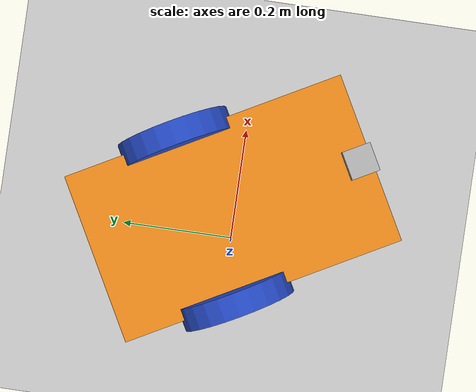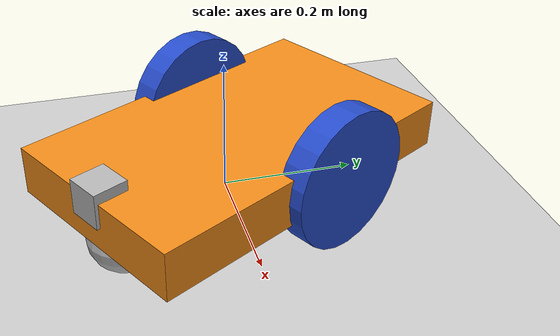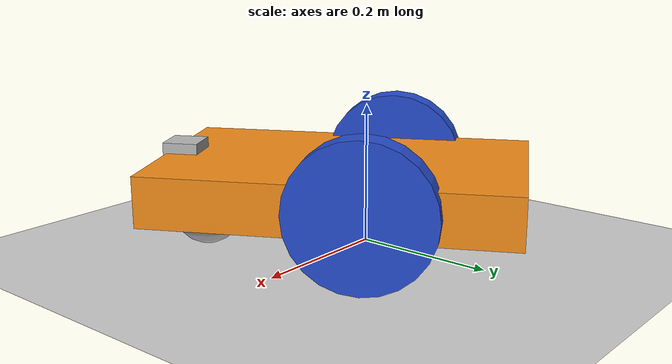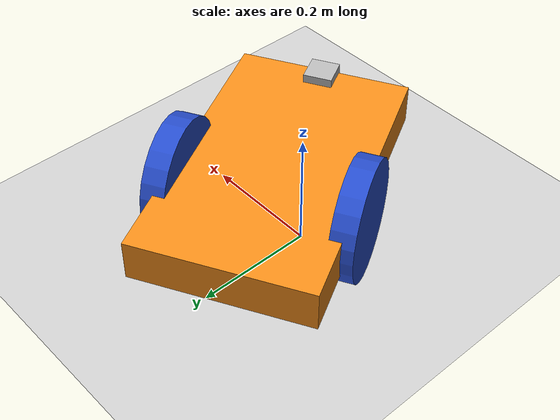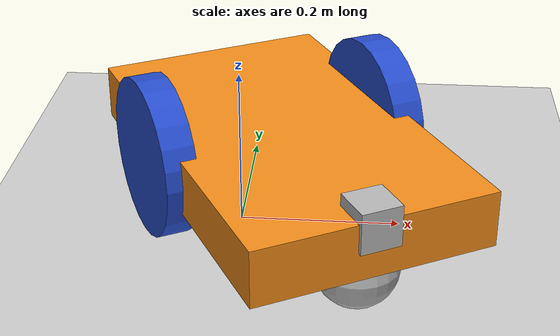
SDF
<sdf version="1.7">
 <world name="default">
  <model name="ground_plane">
   <static>1</static>
   <link name="link">
    <collision name="collision">
     <geometry><plane><normal>0 0 1</normal><size>100 100</size></plane></geometry>
     <surface>
      <contact><collide_bitmask>65535</collide_bitmask></contact>
      <friction><ode><mu>100</mu><mu2>50</mu2></ode></friction>
     </surface>
    </collision>
    <visual name="visual">
     <cast_shadows>0</cast_shadows>
     <geometry><plane><normal>0 0 1</normal><size>100 100</size></plane></geometry>
     <material>
      <script><uri>file://media/materials/scripts/gazebo.material</uri><name>Gazebo/Grey</name></script>
     </material>
    </visual>
   </link>
  </model>
  <model name="my_test_robot">
   <link name="link_chassis">
    <inertial>
     <pose>0 0 0.1 0 -0 0</pose>
     <mass>5</mass>
     <inertia>
      <ixx>0.0395417</ixx>
      <ixy>0</ixy>
      <ixz>0</ixz>
      <iyy>0.106208</iyy>
      <iyz>0</iyz>
      <izz>0.106208</izz>
     </inertia>
    </inertial>
    <collision name="link_chassis_fixed_joint_lump__collision_chassis_collision">
     <geometry><box><size>0.5 0.3 0.07</size></box></geometry>
    </collision>
    <collision name="link_chassis_fixed_joint_lump__caster_front_collision_collision_1">
     <pose>0.35 0 -0.05 0 -0 0</pose>
     <geometry><sphere><radius>0.05</radius></sphere></geometry>
    </collision>
    <visual name="link_chassis_visual">
     <geometry><box><size>0.5 0.3 0.07</size></box></geometry>
     <material>
      <script><name>Gazebo/Orange</name><uri>file://media/materials/scripts/gazebo.material</uri></script>
     </material>
    </visual>
    <visual name="link_chassis_fixed_joint_lump__caster_front_visual_visual_1">
     <pose>0.2 0 -0.05 0 -0 0</pose>
     <geometry><sphere><radius>0.05</radius></sphere></geometry>
    </visual>
   </link>
   <joint name="camera_joint_z_axis" type="revolute">
    <pose relative_to="link_chassis">0.23 0 0 0 -0 0</pose>
    <parent>link_chassis</parent>
    <child>camera_link</child>
    <axis>
     <xyz>0 0 1</xyz>
     <limit><effort>1000</effort><velocity>0.02</velocity><lower>-1e+16</lower><upper>1e+16</upper></limit>
     <dynamics><spring_reference>0</spring_reference><spring_stiffness>0</spring_stiffness></dynamics>
    </axis>
   </joint>
   <link name="camera_link">
    <pose relative_to="camera_joint_z_axis">0 0 0 0 -0 0</pose>
    <inertial>
     <mass>1e-05</mass>
     <inertia><ixx>1e-06</ixx><ixy>0</ixy><ixz>0</ixz><iyy>1e-06</iyy><iyz>0</iyz><izz>1e-06</izz></inertia>
    </inertial>
    <collision name="camera_link_collision">
     <pose>0 0 0.025 0 -0 0</pose>
     <geometry><box><size>0.05 0.05 0.05</size></box></geometry>
    </collision>
    <visual name="camera_link_visual">
     <pose>0 0 0.025 0 -0 0</pose>
     <geometry><box><size>0.05 0.05 0.05</size></box></geometry>
    </visual>
    <sensor name="camera" type="camera">
     <always_on>1</always_on>
     <update_rate>15</update_rate>
     <camera name="camera">
      <horizontal_fov>1.46608</horizontal_fov>
      <image><width>640</width><height>480</height><format>R8G8B8</format></image>
      <distortion><k1>0</k1><k2>0</k2><k3>0</k3><p1>0</p1><p2>0</p2><center>0.5 0.5</center></distortion>
      <clip><near>0.1</near><far>100</far></clip>
     </camera>
     <plugin name="camera_controller" filename="libgazebo_ros_camera.so">
      <ros><remapping>~/image_raw:=image_raw</remapping><remapping>~/camera_info:=camera_info</remapping></ros>
      <camera_name>camera</camera_name>
      <frame_name>camera_link</frame_name>
     </plugin>
    </sensor>
   </link>
   <joint name="joint_left_wheel" type="revolute">
    <pose relative_to="link_chassis">-0.05 -0.15 0 0 -0 0</pose>
    <parent>link_chassis</parent>
    <child>link_left_wheel</child>
    <axis>
     <xyz>0 1 0</xyz>
     <limit><effort>10000</effort><velocity>1000</velocity><lower>-1e+16</lower><upper>1e+16</upper></limit>
     <dynamics><spring_reference>0</spring_reference><spring_stiffness>0</spring_stiffness></dynamics>
    </axis>
   </joint>
   <link name="link_left_wheel">
    <pose relative_to="joint_left_wheel">0 0 0 0 -0 0</pose>
    <inertial>
     <pose>0 0 0 -0 1.5707 1.5707</pose>
     <mass>0.2</mass>
     <inertia>
      <ixx>0.000526667</ixx>
      <ixy>0</ixy>
      <ixz>0</ixz>
      <iyy>0.000526667</iyy>
      <iyz>0</iyz>
      <izz>0.001</izz>
     </inertia>
    </inertial>
    <collision name="link_left_wheel_collision_collision">
     <pose>0 0 0 1.57089 1.57079 -3.14159</pose>
     <geometry><cylinder><length>0.04</length><radius>0.1</radius></cylinder></geometry>
    </collision>
    <visual name="link_left_wheel_visual_visual">
     <pose>0 0 0 1.57089 1.57079 -3.14159</pose>
     <geometry><cylinder><length>0.04</length><radius>0.1</radius></cylinder></geometry>
     <material>
      <script><name>Gazebo/Blue</name><uri>file://media/materials/scripts/gazebo.material</uri></script>
     </material>
    </visual>
   </link>
   <joint name="joint_right_wheel" type="revolute">
    <pose relative_to="link_chassis">-0.05 0.15 0 0 -0 0</pose>
    <parent>link_chassis</parent>
    <child>link_right_wheel</child>
    <axis>
     <xyz>0 1 0</xyz>
     <limit><effort>10000</effort><velocity>1000</velocity><lower>-1e+16</lower><upper>1e+16</upper></limit>
     <dynamics><spring_reference>0</spring_reference><spring_stiffness>0</spring_stiffness></dynamics>
    </axis>
   </joint>
   <link name="link_right_wheel">
    <pose relative_to="joint_right_wheel">0 0 0 0 -0 0</pose>
    <inertial>
     <pose>0 0 0 -0 1.5707 1.5707</pose>
     <mass>0.2</mass>
     <inertia>
      <ixx>0.000526667</ixx>
      <ixy>0</ixy>
      <ixz>0</ixz>
      <iyy>0.000526667</iyy>
      <iyz>0</iyz>
      <izz>0.001</izz>
     </inertia>
    </inertial>
    <collision name="link_right_wheel_collision_collision">
     <pose>0 0 0 1.57089 1.57079 -3.14159</pose>
     <geometry><cylinder><length>0.04</length><radius>0.1</radius></cylinder></geometry>
    </collision>
    <visual name="link_right_wheel_visual_visual">
     <pose>0 0 0 1.57089 1.57079 -3.14159</pose>
     <geometry><cylinder><length>0.04</length><radius>0.1</radius></cylinder></geometry>
     <material>
      <script><name>Gazebo/Blue</name><uri>file://media/materials/scripts/gazebo.material</uri></script>
     </material>
    </visual>
   </link>
   <plugin name="wheel_drive_controller" filename="libgazebo_ros_diff_drive.so">
    <num_wheel_pairs>1</num_wheel_pairs>
    <left_joint>joint_right_wheel</left_joint>
    <right_joint>joint_left_wheel</right_joint>
    <wheel_separation>0.2</wheel_separation>
    <wheel_diameter>0.2</wheel_diameter>
    <max_wheel_torque>20.0</max_wheel_torque>
    <max_wheel_acceleration>10.0</max_wheel_acceleration>
    <odometry_frame>odom</odometry_frame>
    <robot_base_frame>link_chassis</robot_base_frame>
    <ros><namespace>/</namespace><argument>/cmd_vel:=cmd_vel</argument><argument>/odom:=odom</argument></ros>
    <publish_odom>1</publish_odom>
    <publish_odom_tf>1</publish_odom_tf>
    <update_rate>100.0</update_rate>
   </plugin>
   <static>0</static>
   <plugin name="gazebo_ros2_control" filename="libgazebo_ros2_control.so">
    <parameters>/root/experimental_robotics/install/robot_urdf/share/robot_urdf/config/config_motors.yaml</parameters>
   </plugin>
   <pose>0.054201 0.003893 0.100001 -9e-06 3e-06 -1.07333</pose>
  </model>
 </world>
</sdf>
